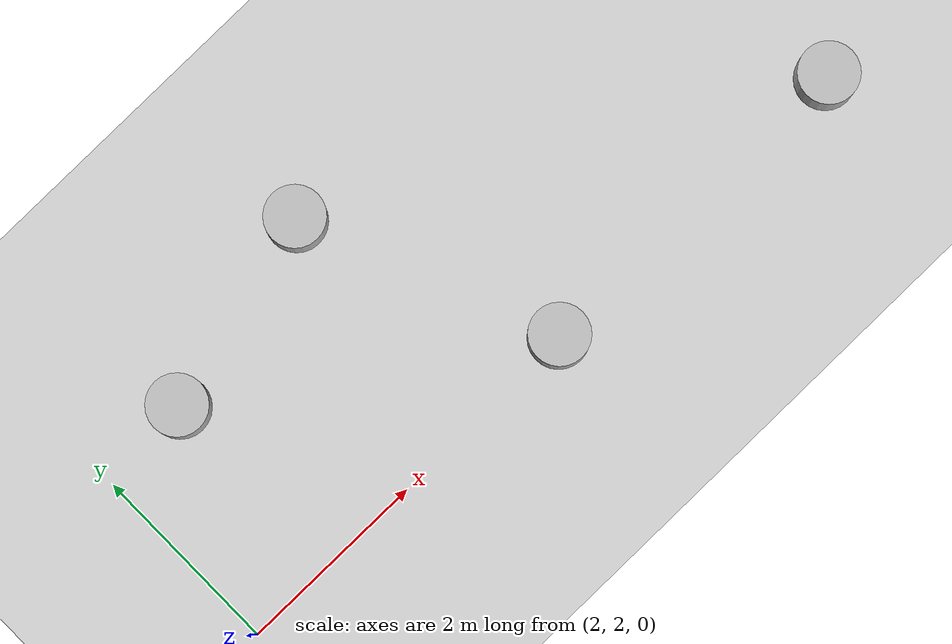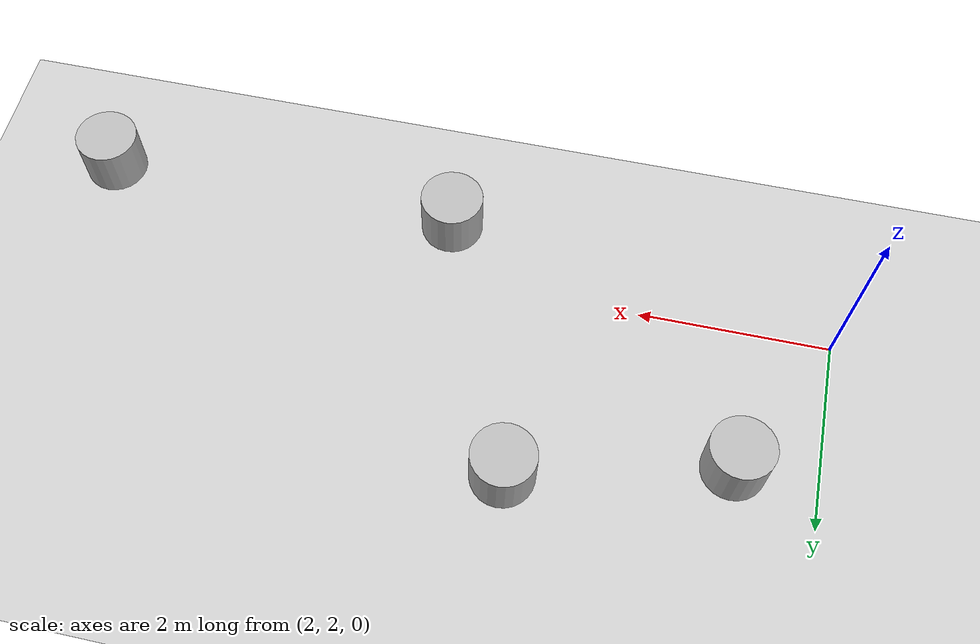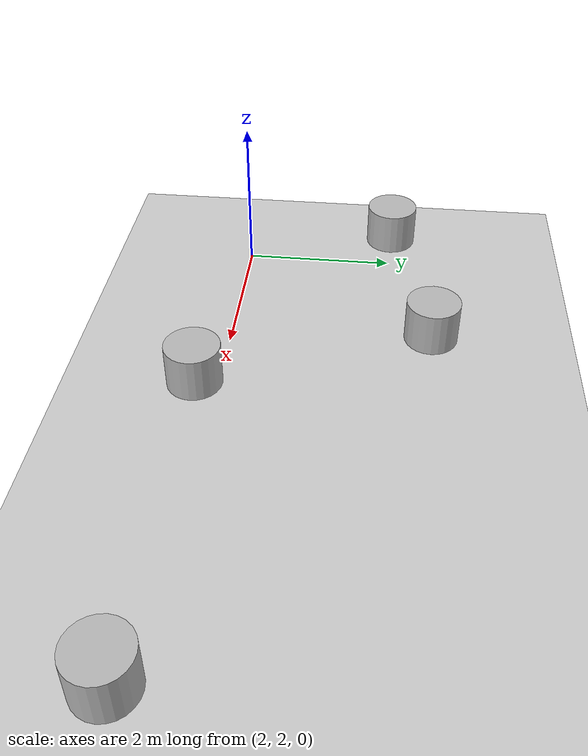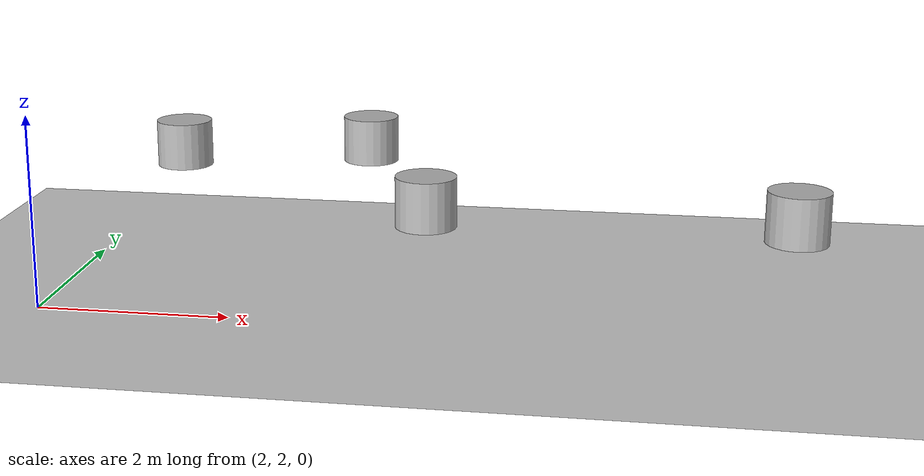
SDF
<sdf version="1.7">
 <world name="default">
  <model name="ground_plane">
   <static>1</static>
   <link name="link">
    <collision name="collision">
     <geometry><plane><normal>0 0 1</normal><size>100 100</size></plane></geometry>
     <surface>
      <contact><collide_bitmask>65535</collide_bitmask></contact>
      <friction><ode><mu>100</mu><mu2>50</mu2></ode></friction>
     </surface>
    </collision>
    <visual name="visual">
     <cast_shadows>0</cast_shadows>
     <geometry><plane><normal>0 0 1</normal><size>100 100</size></plane></geometry>
     <material>
      <script><uri>file://media/materials/scripts/gazebo.material</uri><name>Gazebo/Grey</name></script>
     </material>
    </visual>
   </link>
  </model>
  <gravity>0 0 -9.8</gravity>
  <magnetic_field>6e-06 2.3e-05 -4.2e-05</magnetic_field>
  <atmosphere type="adiabatic"/>
  <physics type="ode">
   <max_step_size>0.001</max_step_size>
   <real_time_factor>1</real_time_factor>
   <real_time_update_rate>1000</real_time_update_rate>
  </physics>
  <scene><ambient>0.4 0.4 0.4 1</ambient><background>0.7 0.7 0.7 1</background><shadows>1</shadows></scene>
  <audio><device>default</device></audio>
  <spherical_coordinates>
   <surface_model>EARTH_WGS84</surface_model>
   <latitude_deg>0</latitude_deg>
   <longitude_deg>0</longitude_deg>
   <elevation>0</elevation>
   <heading_deg>0</heading_deg>
  </spherical_coordinates>
  <model name="turtlebot3_drl_obstacle1">
   <plugin name="obstacle1" filename="libobstacle1.so"/>
   <include><pose>5.0 4.5 1.3 0 0 0</pose><uri>model://obstacles/obstacle1</uri></include>
  </model>
  <model name="turtlebot3_drl_obstacle3">
   <plugin name="obstacle3" filename="libobstacle3.so"/>
   <include><pose>6.0 2.0 1.3 0 0 0</pose><uri>model://obstacles/obstacle3</uri></include>
  </model>
  <model name="turtlebot3_drl_obstacle4">
   <plugin name="obstacle4" filename="libobstacle4.so"/>
   <include><pose>9.5 2.0 1.3 0 0 0</pose><uri>model://obstacles/obstacle4</uri></include>
  </model>
  <model name="turtlebot3_drl_obstacle4">
   <plugin name="obstacle4" filename="libobstacle4.so"/>
   <include><pose>3.0 4.0 1.3 0 0 0</pose><uri>model://obstacles/obstacle4</uri></include>
  </model>
  <light name="user_directional_light_0" type="directional">
   <pose>5.92611 3.87759 1 0 -0 0</pose>
   <diffuse>0.5 0.5 0.5 1</diffuse>
   <specular>0.1 0.1 0.1 1</specular>
   <direction>0.1 0.1 -0.9</direction>
   <attenuation>
    <range>20</range>
    <constant>0.5</constant>
    <linear>0.01</linear>
    <quadratic>0.001</quadratic>
   </attenuation>
  </light>
  <light name="user_point_light_0" type="point">
   <pose>7.74204 2.38082 1 0 -0 0</pose>
   <diffuse>0.5 0.5 0.5 1</diffuse>
   <specular>0.1 0.1 0.1 1</specular>
   <attenuation>
    <range>20</range>
    <constant>0.5</constant>
    <linear>0.01</linear>
    <quadratic>0.001</quadratic>
   </attenuation>
   <cast_shadows>0</cast_shadows>
   <direction>0 0 -1</direction>
  </light>
  <light name="user_spot_light_0" type="spot">
   <pose>2.4624 1.17686 1 0 -0 0</pose>
   <diffuse>0.5 0.5 0.5 1</diffuse>
   <specular>0.1 0.1 0.1 1</specular>
   <direction>0 0 -1</direction>
   <attenuation>
    <range>20</range>
    <constant>0.5</constant>
    <linear>0.01</linear>
    <quadratic>0.001</quadratic>
   </attenuation>
   <cast_shadows>0</cast_shadows>
   <spot><inner_angle>0.6</inner_angle><outer_angle>1</outer_angle><falloff>1</falloff></spot>
  </light>
  <light name="user_spot_light_1" type="spot">
   <pose>12.1106 6.3566 1 0 -0 0</pose>
   <diffuse>0.5 0.5 0.5 1</diffuse>
   <specular>0.1 0.1 0.1 1</specular>
   <direction>0 0 -1</direction>
   <attenuation>
    <range>20</range>
    <constant>0.5</constant>
    <linear>0.01</linear>
    <quadratic>0.001</quadratic>
   </attenuation>
   <cast_shadows>0</cast_shadows>
   <spot><inner_angle>0.6</inner_angle><outer_angle>1</outer_angle><falloff>1</falloff></spot>
  </light>
  <light name="user_spot_light_2" type="spot">
   <pose>7.29605 3.79652 1 0 -0 0</pose>
   <diffuse>0.5 0.5 0.5 1</diffuse>
   <specular>0.1 0.1 0.1 1</specular>
   <direction>0 0 -1</direction>
   <attenuation>
    <range>20</range>
    <constant>0.5</constant>
    <linear>0.01</linear>
    <quadratic>0.001</quadratic>
   </attenuation>
   <cast_shadows>0</cast_shadows>
   <spot><inner_angle>0.6</inner_angle><outer_angle>1</outer_angle><falloff>1</falloff></spot>
  </light>
 </world>
</sdf>

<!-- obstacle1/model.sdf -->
<sdf version='1.6'>
    <model name="obstacle1">
      <link name="link_obstacle1">
        <collision name="collision">
          <geometry>
            <cylinder>
              <radius>0.3</radius>
              <length>0.50</length>
            </cylinder>
          </geometry>
        </collision>

        <visual name="visual">
          <geometry>
            <cylinder>
              <radius>0.3</radius>
              <length>0.50</length>
            </cylinder>
          </geometry>
        </visual>
      </link>
      <plugin name="p3d_base_controller_obstacle1" filename="libgazebo_ros_p3d.so">
        <ros>
          <namespace>/obstacle</namespace>
          <remapping>odom:=odom</remapping>
        </ros>
        <always_on>true</always_on>
        <update_rate>50.0</update_rate>
        <body_name>link_obstacle1</body_name>
        <topic_name>odom_obs</topic_name>
        <gaussian_noise>0.0</gaussian_noise>
        <frame_name>world</frame_name>
        <xyz_offset>0 0 0</xyz_offset>
        <rpy_offset>0 0 0</rpy_offset>
      </plugin>
    </model>
</sdf>

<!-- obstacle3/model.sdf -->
<sdf version='1.6'>
    <model name="obstacle3">
      <link name="link_obstacle3">
        <collision name="collision">
          <geometry>
            <cylinder>
              <radius>0.3</radius>
              <length>0.50</length>
            </cylinder>
          </geometry>
        </collision>

        <visual name="visual">
          <geometry>
            <cylinder>
              <radius>0.3</radius>
              <length>0.50</length>
            </cylinder>
          </geometry>
        </visual>
      </link>
      <plugin name="p3d_base_controller_obstacle3" filename="libgazebo_ros_p3d.so">
        <ros>
          <namespace>/obstacle</namespace>
          <remapping>odom:=odom</remapping>
        </ros>
        <always_on>true</always_on>
        <update_rate>50.0</update_rate>
        <body_name>link_obstacle3</body_name>
        <topic_name>odom_obs</topic_name>
        <gaussian_noise>0.0</gaussian_noise>
        <frame_name>world</frame_name>
        <xyz_offset>0 0 0</xyz_offset>
        <rpy_offset>0 0 0</rpy_offset>
      </plugin>
    </model>
</sdf>

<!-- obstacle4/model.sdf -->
<sdf version='1.6'>
    <model name="obstacle4">
      <link name="link_obstacle4">
        <collision name="collision">
          <geometry>
            <cylinder>
              <radius>0.3</radius>
              <length>0.50</length>
            </cylinder>
          </geometry>
        </collision>

        <visual name="visual">
          <geometry>
            <cylinder>
              <radius>0.3</radius>
              <length>0.50</length>
            </cylinder>
          </geometry>
        </visual>
      </link>
      <plugin name="p3d_base_controller_obstacle4" filename="libgazebo_ros_p3d.so">
        <ros>
          <namespace>/obstacle</namespace>
          <remapping>odom:=odom</remapping>
        </ros>
        <always_on>true</always_on>
        <update_rate>50.0</update_rate>
        <body_name>link_obstacle4</body_name>
        <topic_name>odom_obs</topic_name>
        <gaussian_noise>0.0</gaussian_noise>
        <frame_name>world</frame_name>
        <xyz_offset>0 0 0</xyz_offset>
        <rpy_offset>0 0 0</rpy_offset>
      </plugin>
    </model>
</sdf>
